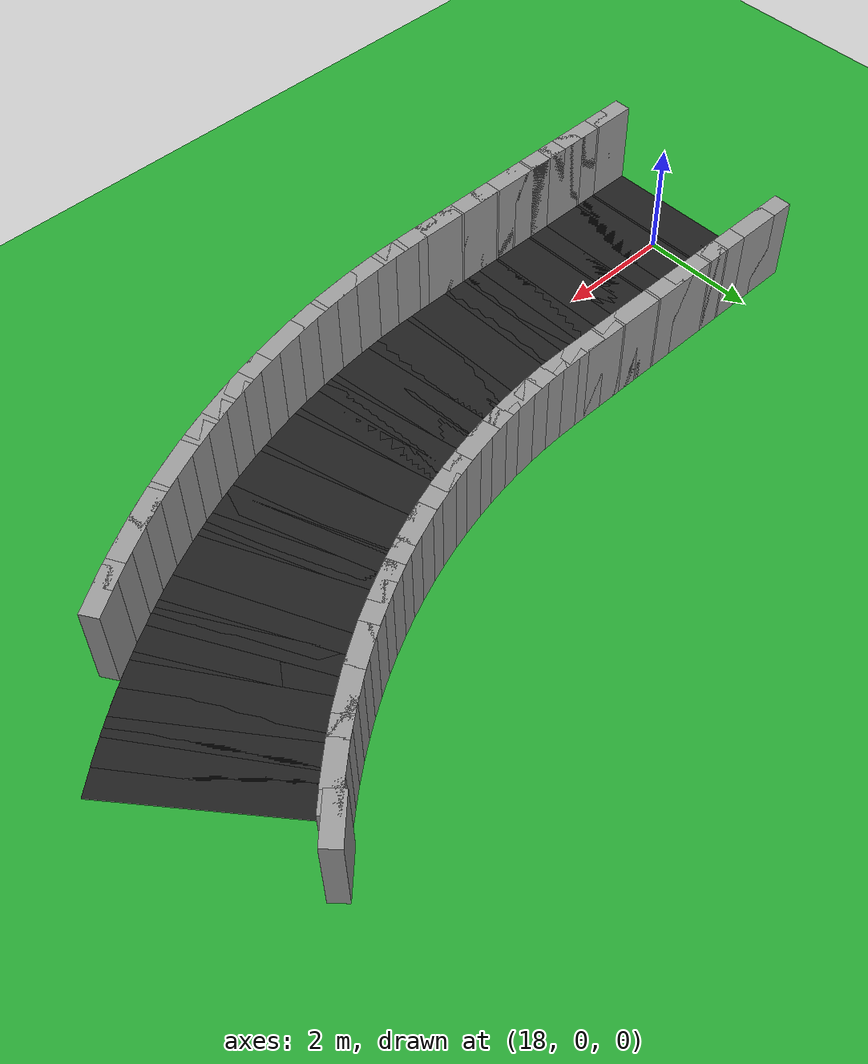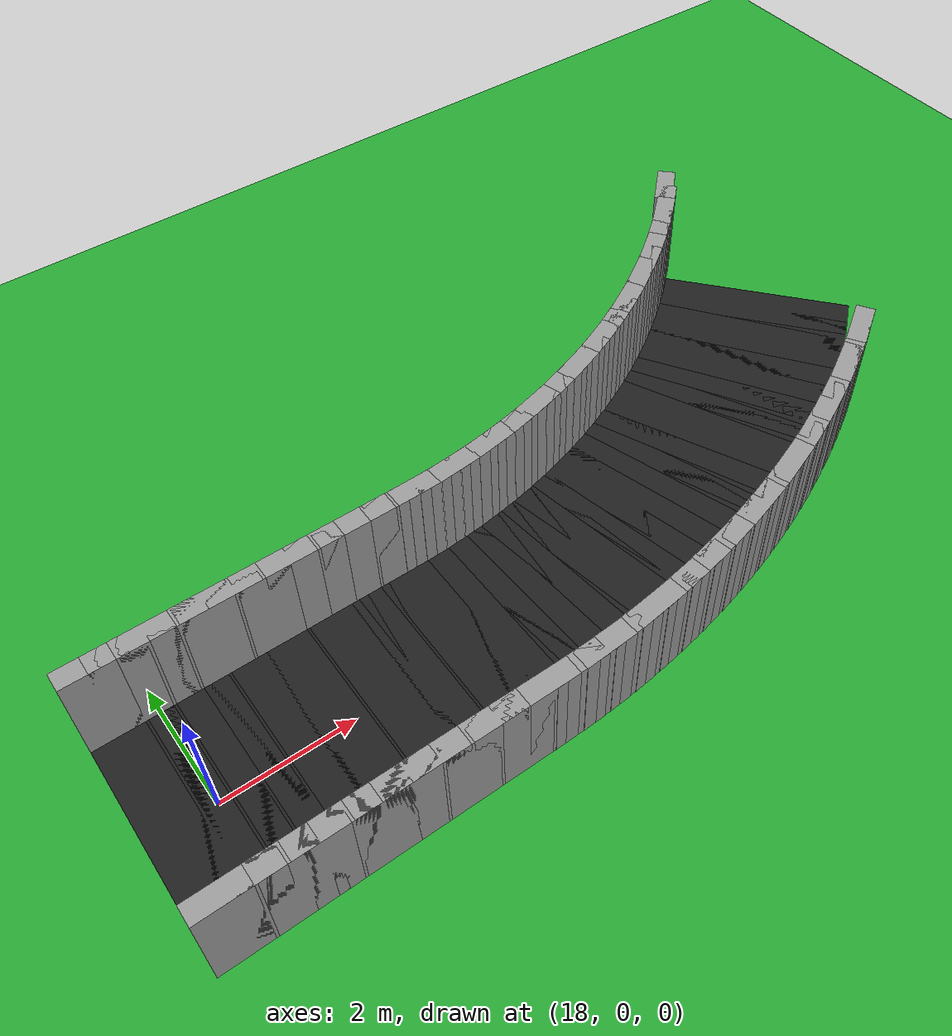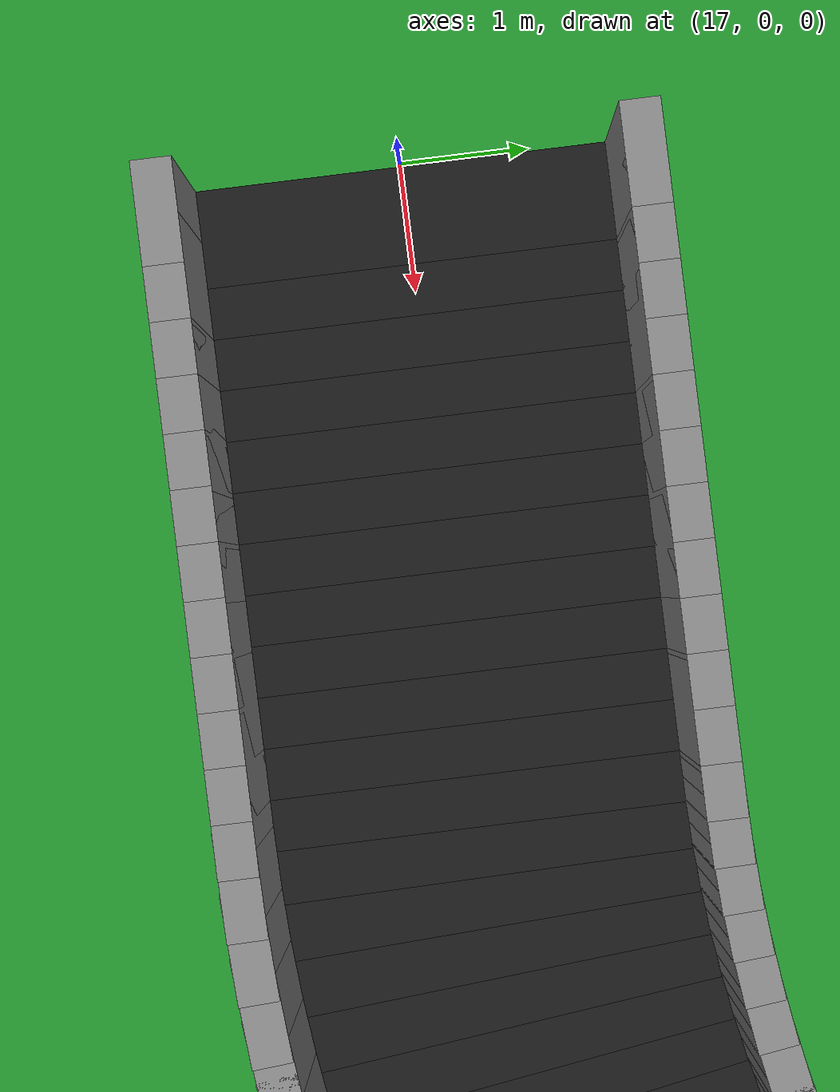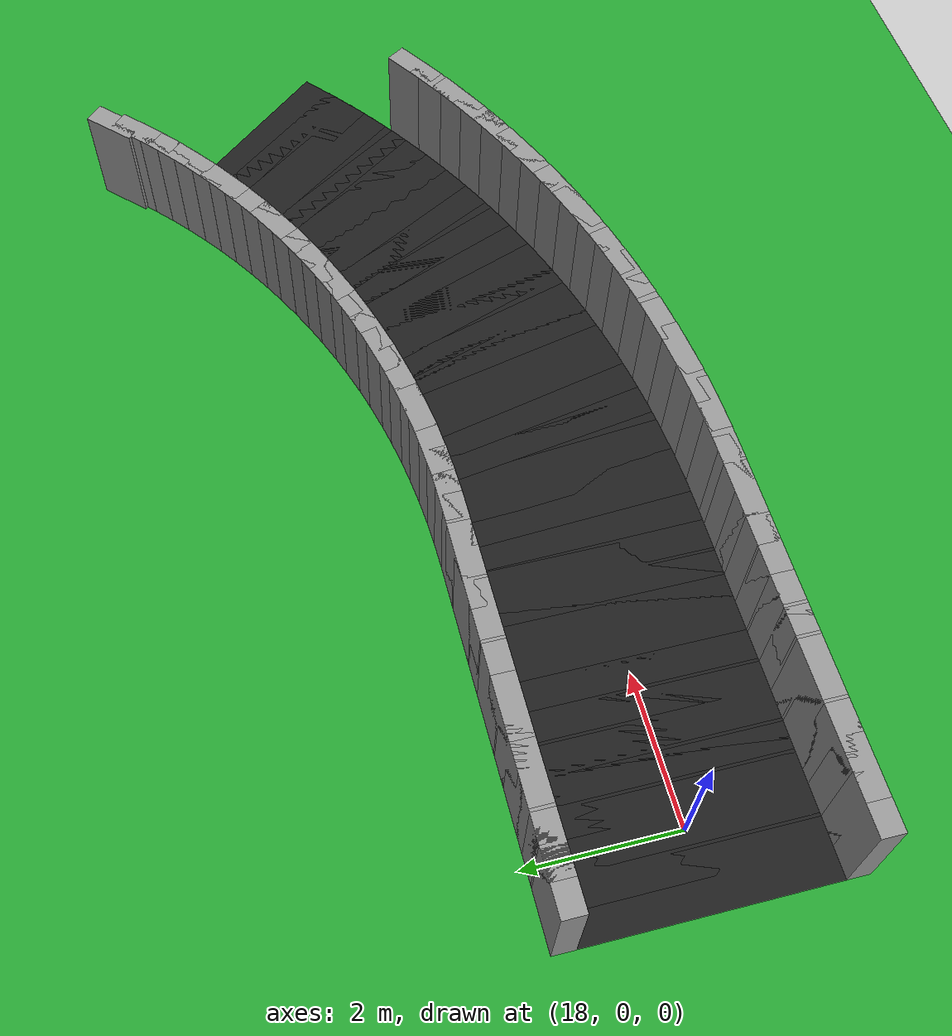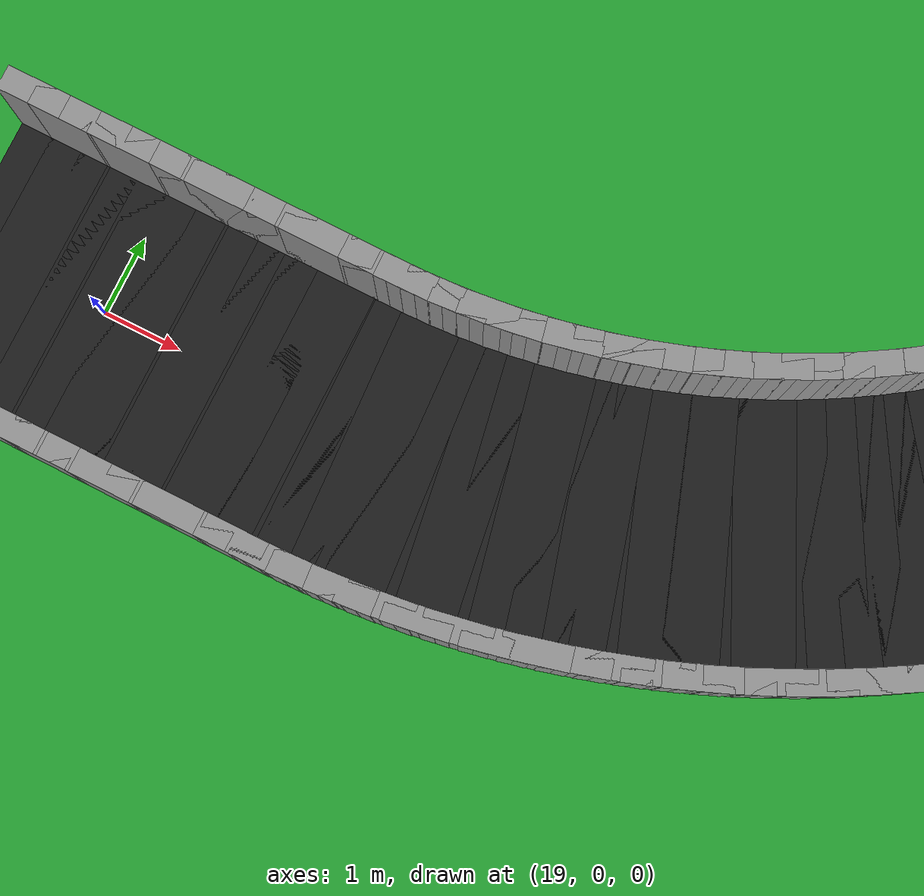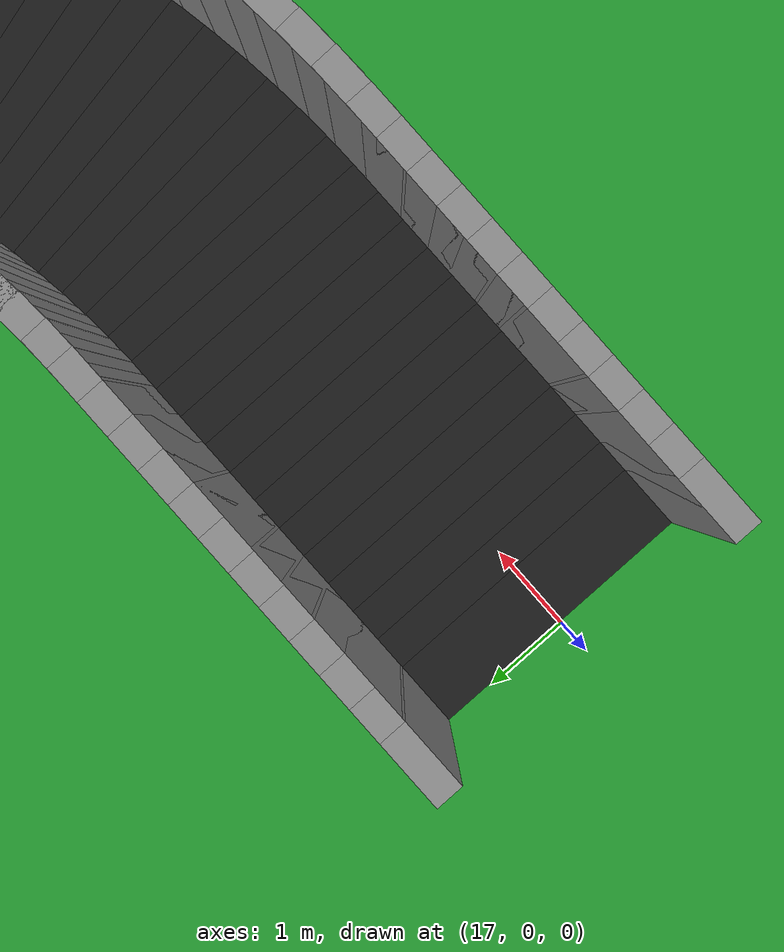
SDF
<sdf version="1.6">
 <world name="obstacle_taper">
  <include><uri>model://sun</uri></include>
  <model name="ground_plane">
   <static>true</static>
   <link name="link">
    <collision name="collision">
     <surface><friction><ode><mu>100</mu><mu2>50</mu2></ode></friction></surface>
     <geometry><plane><normal>0 0 1</normal><size>120 120</size></plane></geometry>
    </collision>
    <visual name="visual">
     <geometry><plane><normal>0 0 1</normal><size>120 120</size></plane></geometry>
     <material>
      <script><uri>file://media/materials/scripts/gazebo.material</uri><name>Gazebo/Green</name></script>
     </material>
    </visual>
   </link>
  </model>
  <model name="asphalt_43">
   <static>true</static>
   <pose>17.400 0.000 0.005 0 0 0.00000</pose>
   <link name="link">
    <visual name="visual">
     <geometry><box><size>0.760 3.200 0.010</size></box></geometry>
     <material>
      <script><uri>file://media/materials/scripts/gazebo.material</uri><name>Gazebo/Black</name></script>
     </material>
    </visual>
   </link>
  </model>
  <model name="curbL_43">
   <static>true</static>
   <pose>17.400 1.750 0.750 0 0 0.00000</pose>
   <link name="link">
    <collision name="collision"><geometry><box><size>0.760 0.300 1.500</size></box></geometry></collision>
    <visual name="visual">
     <geometry><box><size>0.760 0.300 1.500</size></box></geometry>
     <material>
      <script><uri>file://media/materials/scripts/gazebo.material</uri><name>Gazebo/Grey</name></script>
     </material>
    </visual>
   </link>
  </model>
  <model name="curbR_43">
   <static>true</static>
   <pose>17.400 -1.750 0.750 0 0 0.00000</pose>
   <link name="link">
    <collision name="collision"><geometry><box><size>0.760 0.300 1.500</size></box></geometry></collision>
    <visual name="visual">
     <geometry><box><size>0.760 0.300 1.500</size></box></geometry>
     <material>
      <script><uri>file://media/materials/scripts/gazebo.material</uri><name>Gazebo/Grey</name></script>
     </material>
    </visual>
   </link>
  </model>
  <model name="asphalt_44">
   <static>true</static>
   <pose>17.800 0.000 0.005 0 0 0.00000</pose>
   <link name="link">
    <visual name="visual">
     <geometry><box><size>0.760 3.200 0.010</size></box></geometry>
     <material>
      <script><uri>file://media/materials/scripts/gazebo.material</uri><name>Gazebo/Black</name></script>
     </material>
    </visual>
   </link>
  </model>
  <model name="curbL_44">
   <static>true</static>
   <pose>17.800 1.750 0.750 0 0 0.00000</pose>
   <link name="link">
    <collision name="collision"><geometry><box><size>0.760 0.300 1.500</size></box></geometry></collision>
    <visual name="visual">
     <geometry><box><size>0.760 0.300 1.500</size></box></geometry>
     <material>
      <script><uri>file://media/materials/scripts/gazebo.material</uri><name>Gazebo/Grey</name></script>
     </material>
    </visual>
   </link>
  </model>
  <model name="curbR_44">
   <static>true</static>
   <pose>17.800 -1.750 0.750 0 0 0.00000</pose>
   <link name="link">
    <collision name="collision"><geometry><box><size>0.760 0.300 1.500</size></box></geometry></collision>
    <visual name="visual">
     <geometry><box><size>0.760 0.300 1.500</size></box></geometry>
     <material>
      <script><uri>file://media/materials/scripts/gazebo.material</uri><name>Gazebo/Grey</name></script>
     </material>
    </visual>
   </link>
  </model>
  <model name="asphalt_45">
   <static>true</static>
   <pose>18.200 0.000 0.005 0 0 0.00000</pose>
   <link name="link">
    <visual name="visual">
     <geometry><box><size>0.760 3.200 0.010</size></box></geometry>
     <material>
      <script><uri>file://media/materials/scripts/gazebo.material</uri><name>Gazebo/Black</name></script>
     </material>
    </visual>
   </link>
  </model>
  <model name="curbL_45">
   <static>true</static>
   <pose>18.200 1.750 0.750 0 0 0.00000</pose>
   <link name="link">
    <collision name="collision"><geometry><box><size>0.760 0.300 1.500</size></box></geometry></collision>
    <visual name="visual">
     <geometry><box><size>0.760 0.300 1.500</size></box></geometry>
     <material>
      <script><uri>file://media/materials/scripts/gazebo.material</uri><name>Gazebo/Grey</name></script>
     </material>
    </visual>
   </link>
  </model>
  <model name="curbR_45">
   <static>true</static>
   <pose>18.200 -1.750 0.750 0 0 0.00000</pose>
   <link name="link">
    <collision name="collision"><geometry><box><size>0.760 0.300 1.500</size></box></geometry></collision>
    <visual name="visual">
     <geometry><box><size>0.760 0.300 1.500</size></box></geometry>
     <material>
      <script><uri>file://media/materials/scripts/gazebo.material</uri><name>Gazebo/Grey</name></script>
     </material>
    </visual>
   </link>
  </model>
  <model name="asphalt_46">
   <static>true</static>
   <pose>18.600 0.000 0.005 0 0 0.00000</pose>
   <link name="link">
    <visual name="visual">
     <geometry><box><size>0.760 3.200 0.010</size></box></geometry>
     <material>
      <script><uri>file://media/materials/scripts/gazebo.material</uri><name>Gazebo/Black</name></script>
     </material>
    </visual>
   </link>
  </model>
  <model name="curbL_46">
   <static>true</static>
   <pose>18.600 1.750 0.750 0 0 0.00000</pose>
   <link name="link">
    <collision name="collision"><geometry><box><size>0.760 0.300 1.500</size></box></geometry></collision>
    <visual name="visual">
     <geometry><box><size>0.760 0.300 1.500</size></box></geometry>
     <material>
      <script><uri>file://media/materials/scripts/gazebo.material</uri><name>Gazebo/Grey</name></script>
     </material>
    </visual>
   </link>
  </model>
  <model name="curbR_46">
   <static>true</static>
   <pose>18.600 -1.750 0.750 0 0 0.00000</pose>
   <link name="link">
    <collision name="collision"><geometry><box><size>0.760 0.300 1.500</size></box></geometry></collision>
    <visual name="visual">
     <geometry><box><size>0.760 0.300 1.500</size></box></geometry>
     <material>
      <script><uri>file://media/materials/scripts/gazebo.material</uri><name>Gazebo/Grey</name></script>
     </material>
    </visual>
   </link>
  </model>
  <model name="asphalt_47">
   <static>true</static>
   <pose>19.000 0.000 0.005 0 0 0.00000</pose>
   <link name="link">
    <visual name="visual">
     <geometry><box><size>0.760 3.200 0.010</size></box></geometry>
     <material>
      <script><uri>file://media/materials/scripts/gazebo.material</uri><name>Gazebo/Black</name></script>
     </material>
    </visual>
   </link>
  </model>
  <model name="curbL_47">
   <static>true</static>
   <pose>19.000 1.750 0.750 0 0 0.00000</pose>
   <link name="link">
    <collision name="collision"><geometry><box><size>0.760 0.300 1.500</size></box></geometry></collision>
    <visual name="visual">
     <geometry><box><size>0.760 0.300 1.500</size></box></geometry>
     <material>
      <script><uri>file://media/materials/scripts/gazebo.material</uri><name>Gazebo/Grey</name></script>
     </material>
    </visual>
   </link>
  </model>
  <model name="curbR_47">
   <static>true</static>
   <pose>19.000 -1.750 0.750 0 0 0.00000</pose>
   <link name="link">
    <collision name="collision"><geometry><box><size>0.760 0.300 1.500</size></box></geometry></collision>
    <visual name="visual">
     <geometry><box><size>0.760 0.300 1.500</size></box></geometry>
     <material>
      <script><uri>file://media/materials/scripts/gazebo.material</uri><name>Gazebo/Grey</name></script>
     </material>
    </visual>
   </link>
  </model>
  <model name="asphalt_48">
   <static>true</static>
   <pose>19.400 0.000 0.005 0 0 0.00000</pose>
   <link name="link">
    <visual name="visual">
     <geometry><box><size>0.760 3.200 0.010</size></box></geometry>
     <material>
      <script><uri>file://media/materials/scripts/gazebo.material</uri><name>Gazebo/Black</name></script>
     </material>
    </visual>
   </link>
  </model>
  <model name="curbL_48">
   <static>true</static>
   <pose>19.400 1.750 0.750 0 0 0.00000</pose>
   <link name="link">
    <collision name="collision"><geometry><box><size>0.760 0.300 1.500</size></box></geometry></collision>
    <visual name="visual">
     <geometry><box><size>0.760 0.300 1.500</size></box></geometry>
     <material>
      <script><uri>file://media/materials/scripts/gazebo.material</uri><name>Gazebo/Grey</name></script>
     </material>
    </visual>
   </link>
  </model>
  <model name="curbR_48">
   <static>true</static>
   <pose>19.400 -1.750 0.750 0 0 0.00000</pose>
   <link name="link">
    <collision name="collision"><geometry><box><size>0.760 0.300 1.500</size></box></geometry></collision>
    <visual name="visual">
     <geometry><box><size>0.760 0.300 1.500</size></box></geometry>
     <material>
      <script><uri>file://media/materials/scripts/gazebo.material</uri><name>Gazebo/Grey</name></script>
     </material>
    </visual>
   </link>
  </model>
  <model name="asphalt_49">
   <static>true</static>
   <pose>19.800 0.000 0.005 0 0 0.00000</pose>
   <link name="link">
    <visual name="visual">
     <geometry><box><size>0.760 3.200 0.010</size></box></geometry>
     <material>
      <script><uri>file://media/materials/scripts/gazebo.material</uri><name>Gazebo/Black</name></script>
     </material>
    </visual>
   </link>
  </model>
  <model name="curbL_49">
   <static>true</static>
   <pose>19.800 1.750 0.750 0 0 0.00000</pose>
   <link name="link">
    <collision name="collision"><geometry><box><size>0.760 0.300 1.500</size></box></geometry></collision>
    <visual name="visual">
     <geometry><box><size>0.760 0.300 1.500</size></box></geometry>
     <material>
      <script><uri>file://media/materials/scripts/gazebo.material</uri><name>Gazebo/Grey</name></script>
     </material>
    </visual>
   </link>
  </model>
  <model name="curbR_49">
   <static>true</static>
   <pose>19.800 -1.750 0.750 0 0 0.00000</pose>
   <link name="link">
    <collision name="collision"><geometry><box><size>0.760 0.300 1.500</size></box></geometry></collision>
    <visual name="visual">
     <geometry><box><size>0.760 0.300 1.500</size></box></geometry>
     <material>
      <script><uri>file://media/materials/scripts/gazebo.material</uri><name>Gazebo/Grey</name></script>
     </material>
    </visual>
   </link>
  </model>
  <model name="asphalt_50">
   <static>true</static>
   <pose>20.200 0.000 0.005 0 0 0.00000</pose>
   <link name="link">
    <visual name="visual">
     <geometry><box><size>0.760 3.200 0.010</size></box></geometry>
     <material>
      <script><uri>file://media/materials/scripts/gazebo.material</uri><name>Gazebo/Black</name></script>
     </material>
    </visual>
   </link>
  </model>
  <model name="curbL_50">
   <static>true</static>
   <pose>20.200 1.750 0.750 0 0 0.00000</pose>
   <link name="link">
    <collision name="collision"><geometry><box><size>0.760 0.300 1.500</size></box></geometry></collision>
    <visual name="visual">
     <geometry><box><size>0.760 0.300 1.500</size></box></geometry>
     <material>
      <script><uri>file://media/materials/scripts/gazebo.material</uri><name>Gazebo/Grey</name></script>
     </material>
    </visual>
   </link>
  </model>
  <model name="curbR_50">
   <static>true</static>
   <pose>20.200 -1.750 0.750 0 0 0.00000</pose>
   <link name="link">
    <collision name="collision"><geometry><box><size>0.760 0.300 1.500</size></box></geometry></collision>
    <visual name="visual">
     <geometry><box><size>0.760 0.300 1.500</size></box></geometry>
     <material>
      <script><uri>file://media/materials/scripts/gazebo.material</uri><name>Gazebo/Grey</name></script>
     </material>
    </visual>
   </link>
  </model>
  <model name="asphalt_51">
   <static>true</static>
   <pose>20.600 0.000 0.005 0 0 0.00000</pose>
   <link name="link">
    <visual name="visual">
     <geometry><box><size>0.760 3.200 0.010</size></box></geometry>
     <material>
      <script><uri>file://media/materials/scripts/gazebo.material</uri><name>Gazebo/Black</name></script>
     </material>
    </visual>
   </link>
  </model>
  <model name="curbL_51">
   <static>true</static>
   <pose>20.600 1.750 0.750 0 0 0.00000</pose>
   <link name="link">
    <collision name="collision"><geometry><box><size>0.760 0.300 1.500</size></box></geometry></collision>
    <visual name="visual">
     <geometry><box><size>0.760 0.300 1.500</size></box></geometry>
     <material>
      <script><uri>file://media/materials/scripts/gazebo.material</uri><name>Gazebo/Grey</name></script>
     </material>
    </visual>
   </link>
  </model>
  <model name="curbR_51">
   <static>true</static>
   <pose>20.600 -1.750 0.750 0 0 0.00000</pose>
   <link name="link">
    <collision name="collision"><geometry><box><size>0.760 0.300 1.500</size></box></geometry></collision>
    <visual name="visual">
     <geometry><box><size>0.760 0.300 1.500</size></box></geometry>
     <material>
      <script><uri>file://media/materials/scripts/gazebo.material</uri><name>Gazebo/Grey</name></script>
     </material>
    </visual>
   </link>
  </model>
  <model name="asphalt_52">
   <static>true</static>
   <pose>21.000 0.000 0.005 0 0 0.00000</pose>
   <link name="link">
    <visual name="visual">
     <geometry><box><size>0.760 3.200 0.010</size></box></geometry>
     <material>
      <script><uri>file://media/materials/scripts/gazebo.material</uri><name>Gazebo/Black</name></script>
     </material>
    </visual>
   </link>
  </model>
  <model name="curbL_52">
   <static>true</static>
   <pose>21.000 1.750 0.750 0 0 0.00000</pose>
   <link name="link">
    <collision name="collision"><geometry><box><size>0.760 0.300 1.500</size></box></geometry></collision>
    <visual name="visual">
     <geometry><box><size>0.760 0.300 1.500</size></box></geometry>
     <material>
      <script><uri>file://media/materials/scripts/gazebo.material</uri><name>Gazebo/Grey</name></script>
     </material>
    </visual>
   </link>
  </model>
  <model name="curbR_52">
   <static>true</static>
   <pose>21.000 -1.750 0.750 0 0 0.00000</pose>
   <link name="link">
    <collision name="collision"><geometry><box><size>0.760 0.300 1.500</size></box></geometry></collision>
    <visual name="visual">
     <geometry><box><size>0.760 0.300 1.500</size></box></geometry>
     <material>
      <script><uri>file://media/materials/scripts/gazebo.material</uri><name>Gazebo/Grey</name></script>
     </material>
    </visual>
   </link>
  </model>
  <model name="asphalt_53">
   <static>true</static>
   <pose>21.400 0.000 0.005 0 0 0.00000</pose>
   <link name="link">
    <visual name="visual">
     <geometry><box><size>0.760 3.200 0.010</size></box></geometry>
     <material>
      <script><uri>file://media/materials/scripts/gazebo.material</uri><name>Gazebo/Black</name></script>
     </material>
    </visual>
   </link>
  </model>
  <model name="curbL_53">
   <static>true</static>
   <pose>21.400 1.750 0.750 0 0 0.00000</pose>
   <link name="link">
    <collision name="collision"><geometry><box><size>0.760 0.300 1.500</size></box></geometry></collision>
    <visual name="visual">
     <geometry><box><size>0.760 0.300 1.500</size></box></geometry>
     <material>
      <script><uri>file://media/materials/scripts/gazebo.material</uri><name>Gazebo/Grey</name></script>
     </material>
    </visual>
   </link>
  </model>
  <model name="curbR_53">
   <static>true</static>
   <pose>21.400 -1.750 0.750 0 0 0.00000</pose>
   <link name="link">
    <collision name="collision"><geometry><box><size>0.760 0.300 1.500</size></box></geometry></collision>
    <visual name="visual">
     <geometry><box><size>0.760 0.300 1.500</size></box></geometry>
     <material>
      <script><uri>file://media/materials/scripts/gazebo.material</uri><name>Gazebo/Grey</name></script>
     </material>
    </visual>
   </link>
  </model>
  <model name="asphalt_54">
   <static>true</static>
   <pose>21.800 0.000 0.005 0 0 0.00000</pose>
   <link name="link">
    <visual name="visual">
     <geometry><box><size>0.760 3.200 0.010</size></box></geometry>
     <material>
      <script><uri>file://media/materials/scripts/gazebo.material</uri><name>Gazebo/Black</name></script>
     </material>
    </visual>
   </link>
  </model>
  <model name="curbL_54">
   <static>true</static>
   <pose>21.800 1.750 0.750 0 0 0.00000</pose>
   <link name="link">
    <collision name="collision"><geometry><box><size>0.760 0.300 1.500</size></box></geometry></collision>
    <visual name="visual">
     <geometry><box><size>0.760 0.300 1.500</size></box></geometry>
     <material>
      <script><uri>file://media/materials/scripts/gazebo.material</uri><name>Gazebo/Grey</name></script>
     </material>
    </visual>
   </link>
  </model>
  <model name="curbR_54">
   <static>true</static>
   <pose>21.800 -1.750 0.750 0 0 0.00000</pose>
   <link name="link">
    <collision name="collision"><geometry><box><size>0.760 0.300 1.500</size></box></geometry></collision>
    <visual name="visual">
     <geometry><box><size>0.760 0.300 1.500</size></box></geometry>
     <material>
      <script><uri>file://media/materials/scripts/gazebo.material</uri><name>Gazebo/Grey</name></script>
     </material>
    </visual>
   </link>
  </model>
  <model name="asphalt_55">
   <static>true</static>
   <pose>22.196 0.003 0.005 0 0 0.01636</pose>
   <link name="link">
    <visual name="visual">
     <geometry><box><size>0.753 3.200 0.010</size></box></geometry>
     <material>
      <script><uri>file://media/materials/scripts/gazebo.material</uri><name>Gazebo/Black</name></script>
     </material>
    </visual>
   </link>
  </model>
  <model name="curbL_55">
   <static>true</static>
   <pose>22.168 1.753 0.750 0 0 0.01636</pose>
   <link name="link">
    <collision name="collision"><geometry><box><size>0.695 0.300 1.500</size></box></geometry></collision>
    <visual name="visual">
     <geometry><box><size>0.695 0.300 1.500</size></box></geometry>
     <material>
      <script><uri>file://media/materials/scripts/gazebo.material</uri><name>Gazebo/Grey</name></script>
     </material>
    </visual>
   </link>
  </model>
  <model name="curbR_55">
   <static>true</static>
   <pose>22.225 -1.746 0.750 0 0 0.01636</pose>
   <link name="link">
    <collision name="collision"><geometry><box><size>0.810 0.300 1.500</size></box></geometry></collision>
    <visual name="visual">
     <geometry><box><size>0.810 0.300 1.500</size></box></geometry>
     <material>
      <script><uri>file://media/materials/scripts/gazebo.material</uri><name>Gazebo/Grey</name></script>
     </material>
    </visual>
   </link>
  </model>
  <model name="asphalt_56">
   <static>true</static>
   <pose>22.589 0.016 0.005 0 0 0.04909</pose>
   <link name="link">
    <visual name="visual">
     <geometry><box><size>0.753 3.200 0.010</size></box></geometry>
     <material>
      <script><uri>file://media/materials/scripts/gazebo.material</uri><name>Gazebo/Black</name></script>
     </material>
    </visual>
   </link>
  </model>
  <model name="curbL_56">
   <static>true</static>
   <pose>22.503 1.764 0.750 0 0 0.04909</pose>
   <link name="link">
    <collision name="collision"><geometry><box><size>0.695 0.300 1.500</size></box></geometry></collision>
    <visual name="visual">
     <geometry><box><size>0.695 0.300 1.500</size></box></geometry>
     <material>
      <script><uri>file://media/materials/scripts/gazebo.material</uri><name>Gazebo/Grey</name></script>
     </material>
    </visual>
   </link>
  </model>
  <model name="curbR_56">
   <static>true</static>
   <pose>22.675 -1.732 0.750 0 0 0.04909</pose>
   <link name="link">
    <collision name="collision"><geometry><box><size>0.810 0.300 1.500</size></box></geometry></collision>
    <visual name="visual">
     <geometry><box><size>0.810 0.300 1.500</size></box></geometry>
     <material>
      <script><uri>file://media/materials/scripts/gazebo.material</uri><name>Gazebo/Grey</name></script>
     </material>
    </visual>
   </link>
  </model>
  <model name="asphalt_57">
   <static>true</static>
   <pose>22.981 0.042 0.005 0 0 0.08181</pose>
   <link name="link">
    <visual name="visual">
     <geometry><box><size>0.753 3.200 0.010</size></box></geometry>
     <material>
      <script><uri>file://media/materials/scripts/gazebo.material</uri><name>Gazebo/Black</name></script>
     </material>
    </visual>
   </link>
  </model>
  <model name="curbL_57">
   <static>true</static>
   <pose>22.838 1.786 0.750 0 0 0.08181</pose>
   <link name="link">
    <collision name="collision"><geometry><box><size>0.695 0.300 1.500</size></box></geometry></collision>
    <visual name="visual">
     <geometry><box><size>0.695 0.300 1.500</size></box></geometry>
     <material>
      <script><uri>file://media/materials/scripts/gazebo.material</uri><name>Gazebo/Grey</name></script>
     </material>
    </visual>
   </link>
  </model>
  <model name="curbR_57">
   <static>true</static>
   <pose>23.124 -1.702 0.750 0 0 0.08181</pose>
   <link name="link">
    <collision name="collision"><geometry><box><size>0.810 0.300 1.500</size></box></geometry></collision>
    <visual name="visual">
     <geometry><box><size>0.810 0.300 1.500</size></box></geometry>
     <material>
      <script><uri>file://media/materials/scripts/gazebo.material</uri><name>Gazebo/Grey</name></script>
     </material>
    </visual>
   </link>
  </model>
  <model name="asphalt_58">
   <static>true</static>
   <pose>23.371 0.080 0.005 0 0 0.11454</pose>
   <link name="link">
    <visual name="visual">
     <geometry><box><size>0.753 3.200 0.010</size></box></geometry>
     <material>
      <script><uri>file://media/materials/scripts/gazebo.material</uri><name>Gazebo/Black</name></script>
     </material>
    </visual>
   </link>
  </model>
  <model name="curbL_58">
   <static>true</static>
   <pose>23.171 1.819 0.750 0 0 0.11454</pose>
   <link name="link">
    <collision name="collision"><geometry><box><size>0.695 0.300 1.500</size></box></geometry></collision>
    <visual name="visual">
     <geometry><box><size>0.695 0.300 1.500</size></box></geometry>
     <material>
      <script><uri>file://media/materials/scripts/gazebo.material</uri><name>Gazebo/Grey</name></script>
     </material>
    </visual>
   </link>
  </model>
  <model name="curbR_58">
   <static>true</static>
   <pose>23.571 -1.658 0.750 0 0 0.11454</pose>
   <link name="link">
    <collision name="collision"><geometry><box><size>0.810 0.300 1.500</size></box></geometry></collision>
    <visual name="visual">
     <geometry><box><size>0.810 0.300 1.500</size></box></geometry>
     <material>
      <script><uri>file://media/materials/scripts/gazebo.material</uri><name>Gazebo/Grey</name></script>
     </material>
    </visual>
   </link>
  </model>
  <model name="asphalt_59">
   <static>true</static>
   <pose>23.761 0.131 0.005 0 0 0.14726</pose>
   <link name="link">
    <visual name="visual">
     <geometry><box><size>0.753 3.200 0.010</size></box></geometry>
     <material>
      <script><uri>file://media/materials/scripts/gazebo.material</uri><name>Gazebo/Black</name></script>
     </material>
    </visual>
   </link>
  </model>
  <model name="curbL_59">
   <static>true</static>
   <pose>23.504 1.862 0.750 0 0 0.14726</pose>
   <link name="link">
    <collision name="collision"><geometry><box><size>0.695 0.300 1.500</size></box></geometry></collision>
    <visual name="visual">
     <geometry><box><size>0.695 0.300 1.500</size></box></geometry>
     <material>
      <script><uri>file://media/materials/scripts/gazebo.material</uri><name>Gazebo/Grey</name></script>
     </material>
    </visual>
   </link>
  </model>
  <model name="curbR_59">
   <static>true</static>
   <pose>24.017 -1.599 0.750 0 0 0.14726</pose>
   <link name="link">
    <collision name="collision"><geometry><box><size>0.810 0.300 1.500</size></box></geometry></collision>
    <visual name="visual">
     <geometry><box><size>0.810 0.300 1.500</size></box></geometry>
     <material>
      <script><uri>file://media/materials/scripts/gazebo.material</uri><name>Gazebo/Grey</name></script>
     </material>
    </visual>
   </link>
  </model>
  <model name="asphalt_60">
   <static>true</static>
   <pose>24.148 0.195 0.005 0 0 0.17999</pose>
   <link name="link">
    <visual name="visual">
     <geometry><box><size>0.753 3.200 0.010</size></box></geometry>
     <material>
      <script><uri>file://media/materials/scripts/gazebo.material</uri><name>Gazebo/Black</name></script>
     </material>
    </visual>
   </link>
  </model>
  <model name="curbL_60">
   <static>true</static>
   <pose>23.835 1.917 0.750 0 0 0.17999</pose>
   <link name="link">
    <collision name="collision"><geometry><box><size>0.695 0.300 1.500</size></box></geometry></collision>
    <visual name="visual">
     <geometry><box><size>0.695 0.300 1.500</size></box></geometry>
     <material>
      <script><uri>file://media/materials/scripts/gazebo.material</uri><name>Gazebo/Grey</name></script>
     </material>
    </visual>
   </link>
  </model>
  <model name="curbR_60">
   <static>true</static>
   <pose>24.461 -1.526 0.750 0 0 0.17999</pose>
   <link name="link">
    <collision name="collision"><geometry><box><size>0.810 0.300 1.500</size></box></geometry></collision>
    <visual name="visual">
     <geometry><box><size>0.810 0.300 1.500</size></box></geometry>
     <material>
      <script><uri>file://media/materials/scripts/gazebo.material</uri><name>Gazebo/Grey</name></script>
     </material>
    </visual>
   </link>
  </model>
  <model name="asphalt_61">
   <static>true</static>
   <pose>24.533 0.272 0.005 0 0 0.21271</pose>
   <link name="link">
    <visual name="visual">
     <geometry><box><size>0.753 3.200 0.010</size></box></geometry>
     <material>
      <script><uri>file://media/materials/scripts/gazebo.material</uri><name>Gazebo/Black</name></script>
     </material>
    </visual>
   </link>
  </model>
  <model name="curbL_61">
   <static>true</static>
   <pose>24.164 1.982 0.750 0 0 0.21271</pose>
   <link name="link">
    <collision name="collision"><geometry><box><size>0.695 0.300 1.500</size></box></geometry></collision>
    <visual name="visual">
     <geometry><box><size>0.695 0.300 1.500</size></box></geometry>
     <material>
      <script><uri>file://media/materials/scripts/gazebo.material</uri><name>Gazebo/Grey</name></script>
     </material>
    </visual>
   </link>
  </model>
  <model name="curbR_61">
   <static>true</static>
   <pose>24.903 -1.438 0.750 0 0 0.21271</pose>
   <link name="link">
    <collision name="collision"><geometry><box><size>0.810 0.300 1.500</size></box></geometry></collision>
    <visual name="visual">
     <geometry><box><size>0.810 0.300 1.500</size></box></geometry>
     <material>
      <script><uri>file://media/materials/scripts/gazebo.material</uri><name>Gazebo/Grey</name></script>
     </material>
    </visual>
   </link>
  </model>
  <model name="asphalt_62">
   <static>true</static>
   <pose>24.916 0.361 0.005 0 0 0.24544</pose>
   <link name="link">
    <visual name="visual">
     <geometry><box><size>0.753 3.200 0.010</size></box></geometry>
     <material>
      <script><uri>file://media/materials/scripts/gazebo.material</uri><name>Gazebo/Black</name></script>
     </material>
    </visual>
   </link>
  </model>
  <model name="curbL_62">
   <static>true</static>
   <pose>24.490 2.059 0.750 0 0 0.24544</pose>
   <link name="link">
    <collision name="collision"><geometry><box><size>0.695 0.300 1.500</size></box></geometry></collision>
    <visual name="visual">
     <geometry><box><size>0.695 0.300 1.500</size></box></geometry>
     <material>
      <script><uri>file://media/materials/scripts/gazebo.material</uri><name>Gazebo/Grey</name></script>
     </material>
    </visual>
   </link>
  </model>
  <model name="curbR_62">
   <static>true</static>
   <pose>25.341 -1.336 0.750 0 0 0.24544</pose>
   <link name="link">
    <collision name="collision"><geometry><box><size>0.810 0.300 1.500</size></box></geometry></collision>
    <visual name="visual">
     <geometry><box><size>0.810 0.300 1.500</size></box></geometry>
     <material>
      <script><uri>file://media/materials/scripts/gazebo.material</uri><name>Gazebo/Grey</name></script>
     </material>
    </visual>
   </link>
  </model>
  <model name="asphalt_63">
   <static>true</static>
   <pose>25.295 0.463 0.005 0 0 0.27816</pose>
   <link name="link">
    <visual name="visual">
     <geometry><box><size>0.753 3.200 0.010</size></box></geometry>
     <material>
      <script><uri>file://media/materials/scripts/gazebo.material</uri><name>Gazebo/Black</name></script>
     </material>
    </visual>
   </link>
  </model>
  <model name="curbL_63">
   <static>true</static>
   <pose>24.814 2.145 0.750 0 0 0.27816</pose>
   <link name="link">
    <collision name="collision"><geometry><box><size>0.695 0.300 1.500</size></box></geometry></collision>
    <visual name="visual">
     <geometry><box><size>0.695 0.300 1.500</size></box></geometry>
     <material>
      <script><uri>file://media/materials/scripts/gazebo.material</uri><name>Gazebo/Grey</name></script>
     </material>
    </visual>
   </link>
  </model>
  <model name="curbR_63">
   <static>true</static>
   <pose>25.775 -1.220 0.750 0 0 0.27816</pose>
   <link name="link">
    <collision name="collision"><geometry><box><size>0.810 0.300 1.500</size></box></geometry></collision>
    <visual name="visual">
     <geometry><box><size>0.810 0.300 1.500</size></box></geometry>
     <material>
      <script><uri>file://media/materials/scripts/gazebo.material</uri><name>Gazebo/Grey</name></script>
     </material>
    </visual>
   </link>
  </model>
  <model name="asphalt_64">
   <static>true</static>
   <pose>25.671 0.577 0.005 0 0 0.31089</pose>
   <link name="link">
    <visual name="visual">
     <geometry><box><size>0.753 3.200 0.010</size></box></geometry>
     <material>
      <script><uri>file://media/materials/scripts/gazebo.material</uri><name>Gazebo/Black</name></script>
     </material>
    </visual>
   </link>
  </model>
  <model name="curbL_64">
   <static>true</static>
   <pose>25.135 2.243 0.750 0 0 0.31089</pose>
   <link name="link">
    <collision name="collision"><geometry><box><size>0.695 0.300 1.500</size></box></geometry></collision>
    <visual name="visual">
     <geometry><box><size>0.695 0.300 1.500</size></box></geometry>
     <material>
      <script><uri>file://media/materials/scripts/gazebo.material</uri><name>Gazebo/Grey</name></script>
     </material>
    </visual>
   </link>
  </model>
  <model name="curbR_64">
   <static>true</static>
   <pose>26.206 -1.089 0.750 0 0 0.31089</pose>
   <link name="link">
    <collision name="collision"><geometry><box><size>0.810 0.300 1.500</size></box></geometry></collision>
    <visual name="visual">
     <geometry><box><size>0.810 0.300 1.500</size></box></geometry>
     <material>
      <script><uri>file://media/materials/scripts/gazebo.material</uri><name>Gazebo/Grey</name></script>
     </material>
    </visual>
   </link>
  </model>
  <model name="asphalt_65">
   <static>true</static>
   <pose>26.042 0.703 0.005 0 0 0.34361</pose>
   <link name="link">
    <visual name="visual">
     <geometry><box><size>0.753 3.200 0.010</size></box></geometry>
     <material>
      <script><uri>file://media/materials/scripts/gazebo.material</uri><name>Gazebo/Black</name></script>
     </material>
    </visual>
   </link>
  </model>
  <model name="curbL_65">
   <static>true</static>
   <pose>25.453 2.350 0.750 0 0 0.34361</pose>
   <link name="link">
    <collision name="collision"><geometry><box><size>0.695 0.300 1.500</size></box></geometry></collision>
    <visual name="visual">
     <geometry><box><size>0.695 0.300 1.500</size></box></geometry>
     <material>
      <script><uri>file://media/materials/scripts/gazebo.material</uri><name>Gazebo/Grey</name></script>
     </material>
    </visual>
   </link>
  </model>
  <model name="curbR_65">
   <static>true</static>
   <pose>26.632 -0.944 0.750 0 0 0.34361</pose>
   <link name="link">
    <collision name="collision"><geometry><box><size>0.810 0.300 1.500</size></box></geometry></collision>
    <visual name="visual">
     <geometry><box><size>0.810 0.300 1.500</size></box></geometry>
     <material>
      <script><uri>file://media/materials/scripts/gazebo.material</uri><name>Gazebo/Grey</name></script>
     </material>
    </visual>
   </link>
  </model>
  <model name="asphalt_66">
   <static>true</static>
   <pose>26.410 0.841 0.005 0 0 0.37634</pose>
   <link name="link">
    <visual name="visual">
     <geometry><box><size>0.753 3.200 0.010</size></box></geometry>
     <material>
      <script><uri>file://media/materials/scripts/gazebo.material</uri><name>Gazebo/Black</name></script>
     </material>
    </visual>
   </link>
  </model>
  <model name="curbL_66">
   <static>true</static>
   <pose>25.767 2.469 0.750 0 0 0.37634</pose>
   <link name="link">
    <collision name="collision"><geometry><box><size>0.695 0.300 1.500</size></box></geometry></collision>
    <visual name="visual">
     <geometry><box><size>0.695 0.300 1.500</size></box></geometry>
     <material>
      <script><uri>file://media/materials/scripts/gazebo.material</uri><name>Gazebo/Grey</name></script>
     </material>
    </visual>
   </link>
  </model>
  <model name="curbR_66">
   <static>true</static>
   <pose>27.053 -0.786 0.750 0 0 0.37634</pose>
   <link name="link">
    <collision name="collision"><geometry><box><size>0.810 0.300 1.500</size></box></geometry></collision>
    <visual name="visual">
     <geometry><box><size>0.810 0.300 1.500</size></box></geometry>
     <material>
      <script><uri>file://media/materials/scripts/gazebo.material</uri><name>Gazebo/Grey</name></script>
     </material>
    </visual>
   </link>
  </model>
  <model name="asphalt_67">
   <static>true</static>
   <pose>26.773 0.992 0.005 0 0 0.40906</pose>
   <link name="link">
    <visual name="visual">
     <geometry><box><size>0.753 3.200 0.010</size></box></geometry>
     <material>
      <script><uri>file://media/materials/scripts/gazebo.material</uri><name>Gazebo/Black</name></script>
     </material>
    </visual>
   </link>
  </model>
  <model name="curbL_67">
   <static>true</static>
   <pose>26.077 2.597 0.750 0 0 0.40906</pose>
   <link name="link">
    <collision name="collision"><geometry><box><size>0.695 0.300 1.500</size></box></geometry></collision>
    <visual name="visual">
     <geometry><box><size>0.695 0.300 1.500</size></box></geometry>
     <material>
      <script><uri>file://media/materials/scripts/gazebo.material</uri><name>Gazebo/Grey</name></script>
     </material>
    </visual>
   </link>
  </model>
  <model name="curbR_67">
   <static>true</static>
   <pose>27.469 -0.614 0.750 0 0 0.40906</pose>
   <link name="link">
    <collision name="collision"><geometry><box><size>0.810 0.300 1.500</size></box></geometry></collision>
    <visual name="visual">
     <geometry><box><size>0.810 0.300 1.500</size></box></geometry>
     <material>
      <script><uri>file://media/materials/scripts/gazebo.material</uri><name>Gazebo/Grey</name></script>
     </material>
    </visual>
   </link>
  </model>
  <model name="asphalt_68">
   <static>true</static>
   <pose>27.130 1.154 0.005 0 0 0.44179</pose>
   <link name="link">
    <visual name="visual">
     <geometry><box><size>0.753 3.200 0.010</size></box></geometry>
     <material>
      <script><uri>file://media/materials/scripts/gazebo.material</uri><name>Gazebo/Black</name></script>
     </material>
    </visual>
   </link>
  </model>
  <model name="curbL_68">
   <static>true</static>
   <pose>26.382 2.735 0.750 0 0 0.44179</pose>
   <link name="link">
    <collision name="collision"><geometry><box><size>0.695 0.300 1.500</size></box></geometry></collision>
    <visual name="visual">
     <geometry><box><size>0.695 0.300 1.500</size></box></geometry>
     <material>
      <script><uri>file://media/materials/scripts/gazebo.material</uri><name>Gazebo/Grey</name></script>
     </material>
    </visual>
   </link>
  </model>
  <model name="curbR_68">
   <static>true</static>
   <pose>27.878 -0.428 0.750 0 0 0.44179</pose>
   <link name="link">
    <collision name="collision"><geometry><box><size>0.810 0.300 1.500</size></box></geometry></collision>
    <visual name="visual">
     <geometry><box><size>0.810 0.300 1.500</size></box></geometry>
     <material>
      <script><uri>file://media/materials/scripts/gazebo.material</uri><name>Gazebo/Grey</name></script>
     </material>
    </visual>
   </link>
  </model>
  <model name="asphalt_69">
   <static>true</static>
   <pose>27.482 1.327 0.005 0 0 0.47451</pose>
   <link name="link">
    <visual name="visual">
     <geometry><box><size>0.753 3.200 0.010</size></box></geometry>
     <material>
      <script><uri>file://media/materials/scripts/gazebo.material</uri><name>Gazebo/Black</name></script>
     </material>
    </visual>
   </link>
  </model>
  <model name="curbL_69">
   <static>true</static>
   <pose>26.683 2.884 0.750 0 0 0.47451</pose>
   <link name="link">
    <collision name="collision"><geometry><box><size>0.695 0.300 1.500</size></box></geometry></collision>
    <visual name="visual">
     <geometry><box><size>0.695 0.300 1.500</size></box></geometry>
     <material>
      <script><uri>file://media/materials/scripts/gazebo.material</uri><name>Gazebo/Grey</name></script>
     </material>
    </visual>
   </link>
  </model>
  <model name="curbR_69">
   <static>true</static>
   <pose>28.282 -0.229 0.750 0 0 0.47451</pose>
   <link name="link">
    <collision name="collision"><geometry><box><size>0.810 0.300 1.500</size></box></geometry></collision>
    <visual name="visual">
     <geometry><box><size>0.810 0.300 1.500</size></box></geometry>
     <material>
      <script><uri>file://media/materials/scripts/gazebo.material</uri><name>Gazebo/Grey</name></script>
     </material>
    </visual>
   </link>
  </model>
  <model name="asphalt_70">
   <static>true</static>
   <pose>27.829 1.512 0.005 0 0 0.50724</pose>
   <link name="link">
    <visual name="visual">
     <geometry><box><size>0.753 3.200 0.010</size></box></geometry>
     <material>
      <script><uri>file://media/materials/scripts/gazebo.material</uri><name>Gazebo/Black</name></script>
     </material>
    </visual>
   </link>
  </model>
  <model name="curbL_70">
   <static>true</static>
   <pose>26.979 3.042 0.750 0 0 0.50724</pose>
   <link name="link">
    <collision name="collision"><geometry><box><size>0.695 0.300 1.500</size></box></geometry></collision>
    <visual name="visual">
     <geometry><box><size>0.695 0.300 1.500</size></box></geometry>
     <material>
      <script><uri>file://media/materials/scripts/gazebo.material</uri><name>Gazebo/Grey</name></script>
     </material>
    </visual>
   </link>
  </model>
  <model name="curbR_70">
   <static>true</static>
   <pose>28.679 -0.017 0.750 0 0 0.50724</pose>
   <link name="link">
    <collision name="collision"><geometry><box><size>0.810 0.300 1.500</size></box></geometry></collision>
    <visual name="visual">
     <geometry><box><size>0.810 0.300 1.500</size></box></geometry>
     <material>
      <script><uri>file://media/materials/scripts/gazebo.material</uri><name>Gazebo/Grey</name></script>
     </material>
    </visual>
   </link>
  </model>
  <model name="asphalt_71">
   <static>true</static>
   <pose>28.169 1.709 0.005 0 0 0.53996</pose>
   <link name="link">
    <visual name="visual">
     <geometry><box><size>0.753 3.200 0.010</size></box></geometry>
     <material>
      <script><uri>file://media/materials/scripts/gazebo.material</uri><name>Gazebo/Black</name></script>
     </material>
    </visual>
   </link>
  </model>
  <model name="curbL_71">
   <static>true</static>
   <pose>27.269 3.210 0.750 0 0 0.53996</pose>
   <link name="link">
    <collision name="collision"><geometry><box><size>0.695 0.300 1.500</size></box></geometry></collision>
    <visual name="visual">
     <geometry><box><size>0.695 0.300 1.500</size></box></geometry>
     <material>
      <script><uri>file://media/materials/scripts/gazebo.material</uri><name>Gazebo/Grey</name></script>
     </material>
    </visual>
   </link>
  </model>
  <model name="curbR_71">
   <static>true</static>
   <pose>29.068 0.208 0.750 0 0 0.53996</pose>
   <link name="link">
    <collision name="collision"><geometry><box><size>0.810 0.300 1.500</size></box></geometry></collision>
    <visual name="visual">
     <geometry><box><size>0.810 0.300 1.500</size></box></geometry>
     <material>
      <script><uri>file://media/materials/scripts/gazebo.material</uri><name>Gazebo/Grey</name></script>
     </material>
    </visual>
   </link>
  </model>
  <model name="asphalt_72">
   <static>true</static>
   <pose>28.502 1.916 0.005 0 0 0.57269</pose>
   <link name="link">
    <visual name="visual">
     <geometry><box><size>0.753 3.200 0.010</size></box></geometry>
     <material>
      <script><uri>file://media/materials/scripts/gazebo.material</uri><name>Gazebo/Black</name></script>
     </material>
    </visual>
   </link>
  </model>
  <model name="curbL_72">
   <static>true</static>
   <pose>27.554 3.387 0.750 0 0 0.57269</pose>
   <link name="link">
    <collision name="collision"><geometry><box><size>0.695 0.300 1.500</size></box></geometry></collision>
    <visual name="visual">
     <geometry><box><size>0.695 0.300 1.500</size></box></geometry>
     <material>
      <script><uri>file://media/materials/scripts/gazebo.material</uri><name>Gazebo/Grey</name></script>
     </material>
    </visual>
   </link>
  </model>
  <model name="curbR_72">
   <static>true</static>
   <pose>29.450 0.445 0.750 0 0 0.57269</pose>
   <link name="link">
    <collision name="collision"><geometry><box><size>0.810 0.300 1.500</size></box></geometry></collision>
    <visual name="visual">
     <geometry><box><size>0.810 0.300 1.500</size></box></geometry>
     <material>
      <script><uri>file://media/materials/scripts/gazebo.material</uri><name>Gazebo/Grey</name></script>
     </material>
    </visual>
   </link>
  </model>
  <model name="asphalt_73">
   <static>true</static>
   <pose>28.829 2.134 0.005 0 0 0.60541</pose>
   <link name="link">
    <visual name="visual">
     <geometry><box><size>0.753 3.200 0.010</size></box></geometry>
     <material>
      <script><uri>file://media/materials/scripts/gazebo.material</uri><name>Gazebo/Black</name></script>
     </material>
    </visual>
   </link>
  </model>
  <model name="curbL_73">
   <static>true</static>
   <pose>27.833 3.573 0.750 0 0 0.60541</pose>
   <link name="link">
    <collision name="collision"><geometry><box><size>0.695 0.300 1.500</size></box></geometry></collision>
    <visual name="visual">
     <geometry><box><size>0.695 0.300 1.500</size></box></geometry>
     <material>
      <script><uri>file://media/materials/scripts/gazebo.material</uri><name>Gazebo/Grey</name></script>
     </material>
    </visual>
   </link>
  </model>
  <model name="asphalt_74">
   <static>true</static>
   <pose>29.148 2.363 0.005 0 0 0.63814</pose>
   <link name="link">
    <visual name="visual">
     <geometry><box><size>0.753 3.200 0.010</size></box></geometry>
     <material>
      <script><uri>file://media/materials/scripts/gazebo.material</uri><name>Gazebo/Black</name></script>
     </material>
    </visual>
   </link>
  </model>
  <model name="curbL_74">
   <static>true</static>
   <pose>28.105 3.768 0.750 0 0 0.63814</pose>
   <link name="link">
    <collision name="collision"><geometry><box><size>0.695 0.300 1.500</size></box></geometry></collision>
    <visual name="visual">
     <geometry><box><size>0.695 0.300 1.500</size></box></geometry>
     <material>
      <script><uri>file://media/materials/scripts/gazebo.material</uri><name>Gazebo/Grey</name></script>
     </material>
    </visual>
   </link>
  </model>
  <model name="asphalt_75">
   <static>true</static>
   <pose>29.459 2.602 0.005 0 0 0.67086</pose>
   <link name="link">
    <visual name="visual">
     <geometry><box><size>0.753 3.200 0.010</size></box></geometry>
     <material>
      <script><uri>file://media/materials/scripts/gazebo.material</uri><name>Gazebo/Black</name></script>
     </material>
    </visual>
   </link>
  </model>
  <model name="curbL_75">
   <static>true</static>
   <pose>28.372 3.973 0.750 0 0 0.67086</pose>
   <link name="link">
    <collision name="collision"><geometry><box><size>0.695 0.300 1.500</size></box></geometry></collision>
    <visual name="visual">
     <geometry><box><size>0.695 0.300 1.500</size></box></geometry>
     <material>
      <script><uri>file://media/materials/scripts/gazebo.material</uri><name>Gazebo/Grey</name></script>
     </material>
    </visual>
   </link>
  </model>
  <model name="asphalt_76">
   <static>true</static>
   <pose>29.763 2.851 0.005 0 0 0.70359</pose>
   <link name="link">
    <visual name="visual">
     <geometry><box><size>0.753 3.200 0.010</size></box></geometry>
     <material>
      <script><uri>file://media/materials/scripts/gazebo.material</uri><name>Gazebo/Black</name></script>
     </material>
    </visual>
   </link>
  </model>
  <model name="curbL_76">
   <static>true</static>
   <pose>28.631 4.185 0.750 0 0 0.70359</pose>
   <link name="link">
    <collision name="collision"><geometry><box><size>0.695 0.300 1.500</size></box></geometry></collision>
    <visual name="visual">
     <geometry><box><size>0.695 0.300 1.500</size></box></geometry>
     <material>
      <script><uri>file://media/materials/scripts/gazebo.material</uri><name>Gazebo/Grey</name></script>
     </material>
    </visual>
   </link>
  </model>
  <model name="curbL_77">
   <static>true</static>
   <pose>28.883 4.406 0.750 0 0 0.73631</pose>
   <link name="link">
    <collision name="collision"><geometry><box><size>0.695 0.300 1.500</size></box></geometry></collision>
    <visual name="visual">
     <geometry><box><size>0.695 0.300 1.500</size></box></geometry>
     <material>
      <script><uri>file://media/materials/scripts/gazebo.material</uri><name>Gazebo/Grey</name></script>
     </material>
    </visual>
   </link>
  </model>
  <model name="curbL_78">
   <static>true</static>
   <pose>29.128 4.636 0.750 0 0 0.76904</pose>
   <link name="link">
    <collision name="collision"><geometry><box><size>0.695 0.300 1.500</size></box></geometry></collision>
    <visual name="visual">
     <geometry><box><size>0.695 0.300 1.500</size></box></geometry>
     <material>
      <script><uri>file://media/materials/scripts/gazebo.material</uri><name>Gazebo/Grey</name></script>
     </material>
    </visual>
   </link>
  </model>
  <model name="curbL_79">
   <static>true</static>
   <pose>29.355 4.929 0.750 0 0 0.78540</pose>
   <link name="link">
    <collision name="collision"><geometry><box><size>0.760 0.300 1.500</size></box></geometry></collision>
    <visual name="visual">
     <geometry><box><size>0.760 0.300 1.500</size></box></geometry>
     <material>
      <script><uri>file://media/materials/scripts/gazebo.material</uri><name>Gazebo/Grey</name></script>
     </material>
    </visual>
   </link>
  </model>
 </world>
</sdf>
